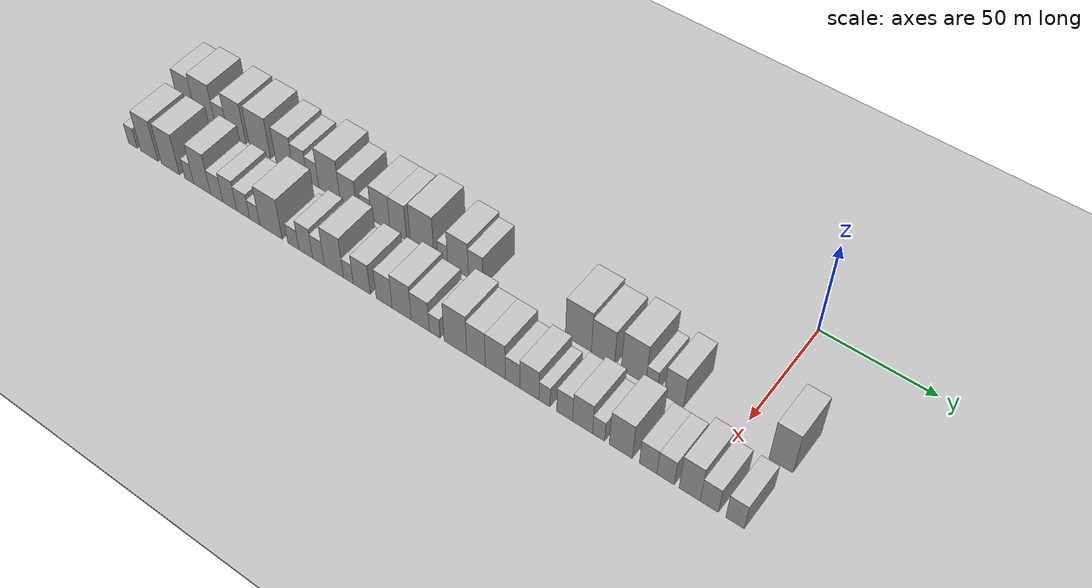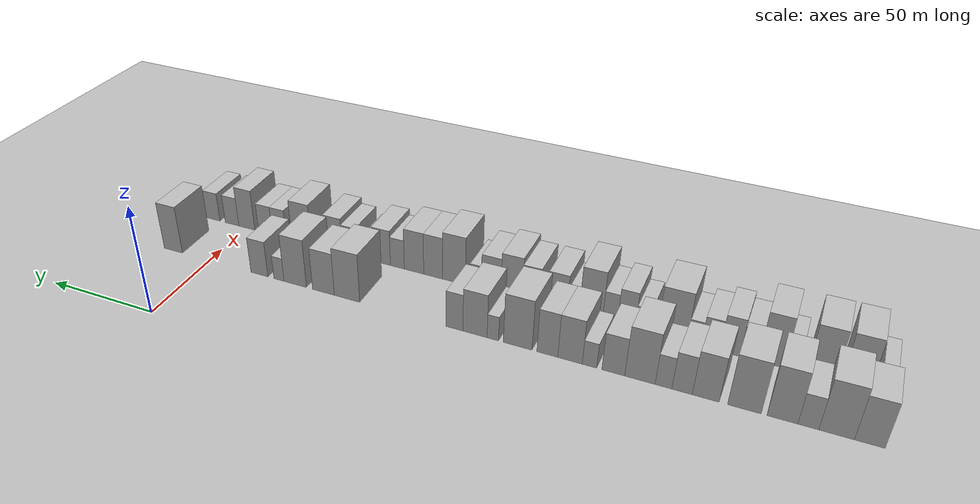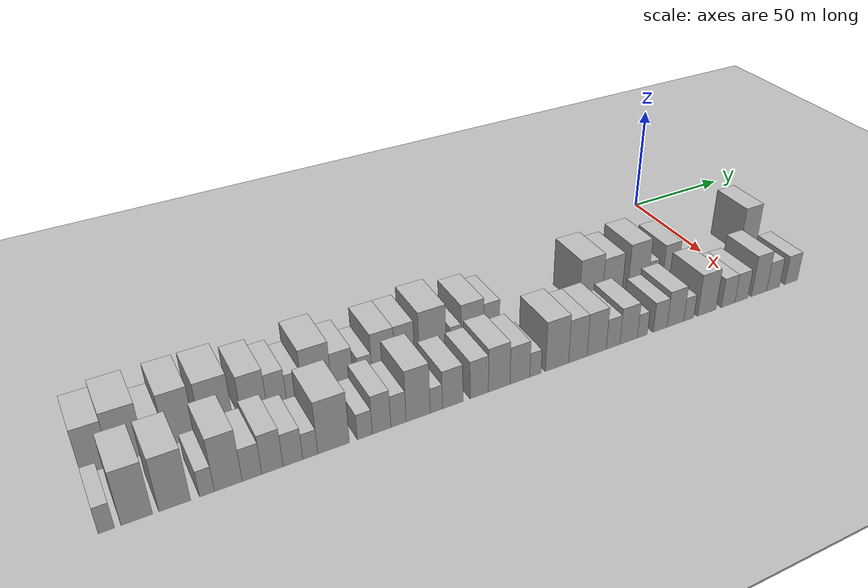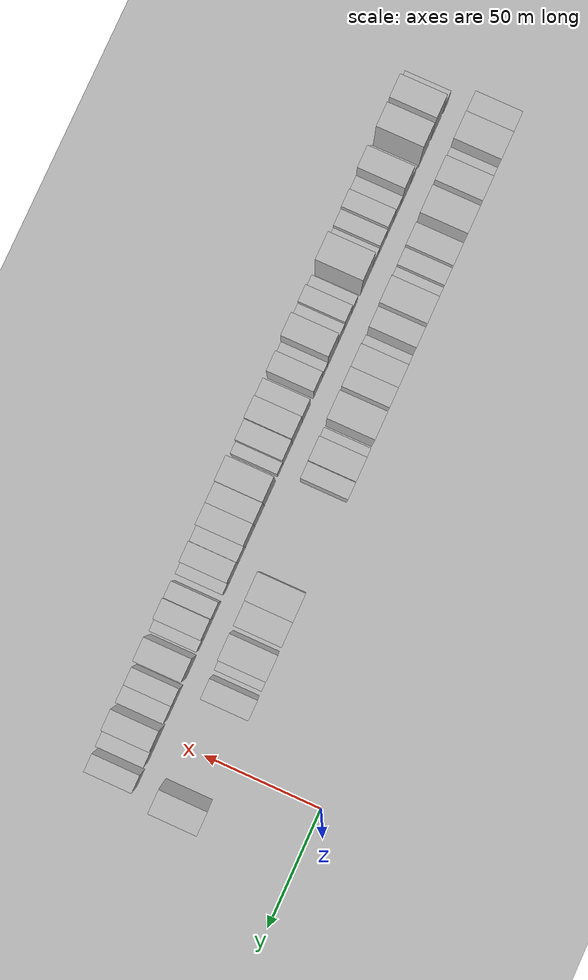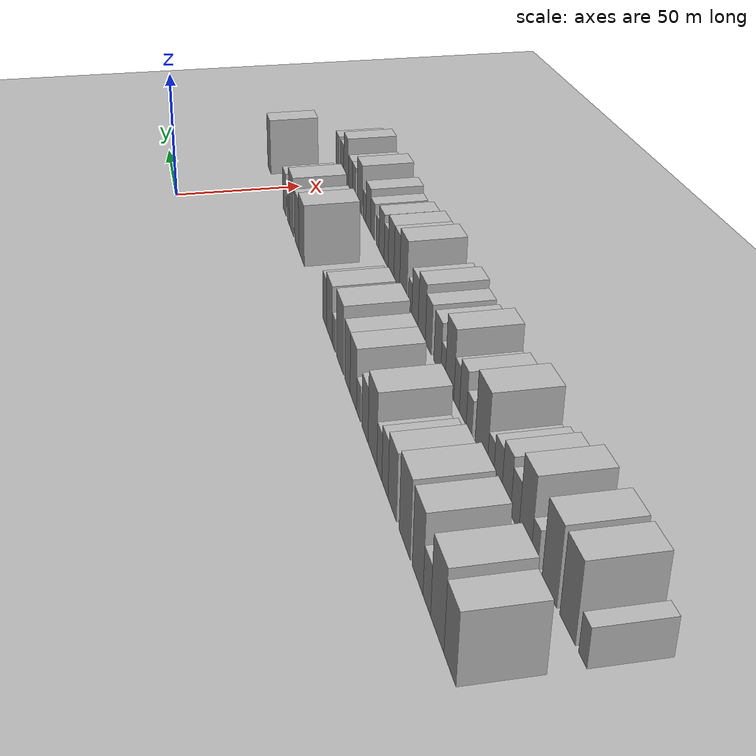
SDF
<sdf version="1.6">
 <world name="default">
  <include><name>ground_plane_1</name><uri>model://HANNAS_ground_plane</uri></include>
  <include>
   <name>ground_plane_2</name>
   <uri>model://HANNAS_ground_plane</uri>
   <pose>100 0 0  0 0 0</pose>
  </include>
  <model name="building_1">
   <static>1</static>
   <pose>50.0000 -272.9973 0 0.000000 0.000000 0.000000</pose>
   <link name="link">
    <pose>0 0 10.50 0 0 0</pose>
    <collision name="collision"><geometry><box><size>20.0000 10.0054 21.0000</size></box></geometry></collision>
    <visual name="visual">
     <cast_shadows>0</cast_shadows>
     <geometry><box><size>20.0000 10.0054 21.0000</size></box></geometry>
     <material>
      <script>
       <uri>model://HANNAS_wall/materials/scripts</uri>
       <uri>model://HANNAS_wall/materials/textures</uri>
       <name>vrc/HANNAS_wall</name>
      </script>
     </material>
    </visual>
   </link>
  </model>
  <model name="building_2">
   <static>1</static>
   <pose>50.0000 -262.0783 0 0.000000 0.000000 0.000000</pose>
   <link name="link">
    <pose>0 0 12.00 0 0 0</pose>
    <collision name="collision"><geometry><box><size>20.0000 11.8327 24.0000</size></box></geometry></collision>
    <visual name="visual">
     <cast_shadows>0</cast_shadows>
     <geometry><box><size>20.0000 11.8327 24.0000</size></box></geometry>
     <material>
      <script>
       <uri>model://HANNAS_wall/materials/scripts</uri>
       <uri>model://HANNAS_wall/materials/textures</uri>
       <name>vrc/HANNAS_wall</name>
      </script>
     </material>
    </visual>
   </link>
  </model>
  <model name="building_3">
   <static>1</static>
   <pose>50.0000 -252.6162 0 0.000000 0.000000 0.000000</pose>
   <link name="link">
    <pose>0 0 7.50 0 0 0</pose>
    <collision name="collision"><geometry><box><size>20.0000 7.0915 15.0000</size></box></geometry></collision>
    <visual name="visual">
     <cast_shadows>0</cast_shadows>
     <geometry><box><size>20.0000 7.0915 15.0000</size></box></geometry>
     <material>
      <script>
       <uri>model://HANNAS_wall/materials/scripts</uri>
       <uri>model://HANNAS_wall/materials/textures</uri>
       <name>vrc/HANNAS_wall</name>
      </script>
     </material>
    </visual>
   </link>
  </model>
  <model name="building_4">
   <static>1</static>
   <pose>50.0000 -243.7639 0 0.000000 0.000000 0.000000</pose>
   <link name="link">
    <pose>0 0 12.00 0 0 0</pose>
    <collision name="collision"><geometry><box><size>20.0000 10.6131 24.0000</size></box></geometry></collision>
    <visual name="visual">
     <cast_shadows>0</cast_shadows>
     <geometry><box><size>20.0000 10.6131 24.0000</size></box></geometry>
     <material>
      <script>
       <uri>model://HANNAS_wall/materials/scripts</uri>
       <uri>model://HANNAS_wall/materials/textures</uri>
       <name>vrc/HANNAS_wall</name>
      </script>
     </material>
    </visual>
   </link>
  </model>
  <model name="building_5">
   <static>1</static>
   <pose>50.0000 -230.4985 0 0.000000 0.000000 0.000000</pose>
   <link name="link">
    <pose>0 0 12.00 0 0 0</pose>
    <collision name="collision"><geometry><box><size>20.0000 11.9177 24.0000</size></box></geometry></collision>
    <visual name="visual">
     <cast_shadows>0</cast_shadows>
     <geometry><box><size>20.0000 11.9177 24.0000</size></box></geometry>
     <material>
      <script>
       <uri>model://HANNAS_wall/materials/scripts</uri>
       <uri>model://HANNAS_wall/materials/textures</uri>
       <name>vrc/HANNAS_wall</name>
      </script>
     </material>
    </visual>
   </link>
  </model>
  <model name="building_6">
   <static>1</static>
   <pose>50.0000 -216.6666 0 0.000000 0.000000 0.000000</pose>
   <link name="link">
    <pose>0 0 10.50 0 0 0</pose>
    <collision name="collision"><geometry><box><size>20.0000 9.7462 21.0000</size></box></geometry></collision>
    <visual name="visual">
     <cast_shadows>0</cast_shadows>
     <geometry><box><size>20.0000 9.7462 21.0000</size></box></geometry>
     <material>
      <script>
       <uri>model://HANNAS_wall/materials/scripts</uri>
       <uri>model://HANNAS_wall/materials/textures</uri>
       <name>vrc/HANNAS_wall</name>
      </script>
     </material>
    </visual>
   </link>
  </model>
  <model name="building_7">
   <static>1</static>
   <pose>50.0000 -208.0286 0 0.000000 0.000000 0.000000</pose>
   <link name="link">
    <pose>0 0 9.00 0 0 0</pose>
    <collision name="collision"><geometry><box><size>20.0000 7.5296 18.0000</size></box></geometry></collision>
    <visual name="visual">
     <cast_shadows>0</cast_shadows>
     <geometry><box><size>20.0000 7.5296 18.0000</size></box></geometry>
     <material>
      <script>
       <uri>model://HANNAS_wall/materials/scripts</uri>
       <uri>model://HANNAS_wall/materials/textures</uri>
       <name>vrc/HANNAS_wall</name>
      </script>
     </material>
    </visual>
   </link>
  </model>
  <model name="building_8">
   <static>1</static>
   <pose>50.0000 -201.1453 0 0.000000 0.000000 0.000000</pose>
   <link name="link">
    <pose>0 0 7.50 0 0 0</pose>
    <collision name="collision"><geometry><box><size>20.0000 6.2371 15.0000</size></box></geometry></collision>
    <visual name="visual">
     <cast_shadows>0</cast_shadows>
     <geometry><box><size>20.0000 6.2371 15.0000</size></box></geometry>
     <material>
      <script>
       <uri>model://HANNAS_wall/materials/scripts</uri>
       <uri>model://HANNAS_wall/materials/textures</uri>
       <name>vrc/HANNAS_wall</name>
      </script>
     </material>
    </visual>
   </link>
  </model>
  <model name="building_9">
   <static>1</static>
   <pose>50.0000 -192.2525 0 0.000000 0.000000 0.000000</pose>
   <link name="link">
    <pose>0 0 12.00 0 0 0</pose>
    <collision name="collision"><geometry><box><size>20.0000 11.5486 24.0000</size></box></geometry></collision>
    <visual name="visual">
     <cast_shadows>0</cast_shadows>
     <geometry><box><size>20.0000 11.5486 24.0000</size></box></geometry>
     <material>
      <script>
       <uri>model://HANNAS_wall/materials/scripts</uri>
       <uri>model://HANNAS_wall/materials/textures</uri>
       <name>vrc/HANNAS_wall</name>
      </script>
     </material>
    </visual>
   </link>
  </model>
  <model name="building_10">
   <static>1</static>
   <pose>50.0000 -182.0756 0 0.000000 0.000000 0.000000</pose>
   <link name="link">
    <pose>0 0 9.00 0 0 0</pose>
    <collision name="collision"><geometry><box><size>20.0000 8.8052 18.0000</size></box></geometry></collision>
    <visual name="visual">
     <cast_shadows>0</cast_shadows>
     <geometry><box><size>20.0000 8.8052 18.0000</size></box></geometry>
     <material>
      <script>
       <uri>model://HANNAS_wall/materials/scripts</uri>
       <uri>model://HANNAS_wall/materials/textures</uri>
       <name>vrc/HANNAS_wall</name>
      </script>
     </material>
    </visual>
   </link>
  </model>
  <model name="building_11">
   <static>1</static>
   <pose>50.0000 -172.8159 0 0.000000 0.000000 0.000000</pose>
   <link name="link">
    <pose>0 0 6.00 0 0 0</pose>
    <collision name="collision"><geometry><box><size>20.0000 5.7141 12.0000</size></box></geometry></collision>
    <visual name="visual">
     <cast_shadows>0</cast_shadows>
     <geometry><box><size>20.0000 5.7141 12.0000</size></box></geometry>
     <material>
      <script>
       <uri>model://HANNAS_wall/materials/scripts</uri>
       <uri>model://HANNAS_wall/materials/textures</uri>
       <name>vrc/HANNAS_wall</name>
      </script>
     </material>
    </visual>
   </link>
  </model>
  <model name="building_12">
   <static>1</static>
   <pose>50.0000 -165.0856 0 0.000000 0.000000 0.000000</pose>
   <link name="link">
    <pose>0 0 10.50 0 0 0</pose>
    <collision name="collision"><geometry><box><size>20.0000 9.7466 21.0000</size></box></geometry></collision>
    <visual name="visual">
     <cast_shadows>0</cast_shadows>
     <geometry><box><size>20.0000 9.7466 21.0000</size></box></geometry>
     <material>
      <script>
       <uri>model://HANNAS_wall/materials/scripts</uri>
       <uri>model://HANNAS_wall/materials/textures</uri>
       <name>vrc/HANNAS_wall</name>
      </script>
     </material>
    </visual>
   </link>
  </model>
  <model name="building_13">
   <static>1</static>
   <pose>50.0000 -156.0007 0 0.000000 0.000000 0.000000</pose>
   <link name="link">
    <pose>0 0 10.50 0 0 0</pose>
    <collision name="collision"><geometry><box><size>20.0000 8.4233 21.0000</size></box></geometry></collision>
    <visual name="visual">
     <cast_shadows>0</cast_shadows>
     <geometry><box><size>20.0000 8.4233 21.0000</size></box></geometry>
     <material>
      <script>
       <uri>model://HANNAS_wall/materials/scripts</uri>
       <uri>model://HANNAS_wall/materials/textures</uri>
       <name>vrc/HANNAS_wall</name>
      </script>
     </material>
    </visual>
   </link>
  </model>
  <model name="building_14">
   <static>1</static>
   <pose>50.0000 -143.8482 0 0.000000 0.000000 0.000000</pose>
   <link name="link">
    <pose>0 0 12.00 0 0 0</pose>
    <collision name="collision"><geometry><box><size>20.0000 11.8817 24.0000</size></box></geometry></collision>
    <visual name="visual">
     <cast_shadows>0</cast_shadows>
     <geometry><box><size>20.0000 11.8817 24.0000</size></box></geometry>
     <material>
      <script>
       <uri>model://HANNAS_wall/materials/scripts</uri>
       <uri>model://HANNAS_wall/materials/textures</uri>
       <name>vrc/HANNAS_wall</name>
      </script>
     </material>
    </visual>
   </link>
  </model>
  <model name="building_15">
   <static>1</static>
   <pose>50.0000 -133.4855 0 0.000000 0.000000 0.000000</pose>
   <link name="link">
    <pose>0 0 6.00 0 0 0</pose>
    <collision name="collision"><geometry><box><size>20.0000 4.8438 12.0000</size></box></geometry></collision>
    <visual name="visual">
     <cast_shadows>0</cast_shadows>
     <geometry><box><size>20.0000 4.8438 12.0000</size></box></geometry>
     <material>
      <script>
       <uri>model://HANNAS_wall/materials/scripts</uri>
       <uri>model://HANNAS_wall/materials/textures</uri>
       <name>vrc/HANNAS_wall</name>
      </script>
     </material>
    </visual>
   </link>
  </model>
  <model name="building_16">
   <static>1</static>
   <pose>50.0000 -125.9108 0 0.000000 0.000000 0.000000</pose>
   <link name="link">
    <pose>0 0 10.50 0 0 0</pose>
    <collision name="collision"><geometry><box><size>20.0000 10.3055 21.0000</size></box></geometry></collision>
    <visual name="visual">
     <cast_shadows>0</cast_shadows>
     <geometry><box><size>20.0000 10.3055 21.0000</size></box></geometry>
     <material>
      <script>
       <uri>model://HANNAS_wall/materials/scripts</uri>
       <uri>model://HANNAS_wall/materials/textures</uri>
       <name>vrc/HANNAS_wall</name>
      </script>
     </material>
    </visual>
   </link>
  </model>
  <model name="building_17">
   <static>1</static>
   <pose>50.0000 -117.1440 0 0.000000 0.000000 0.000000</pose>
   <link name="link">
    <pose>0 0 9.00 0 0 0</pose>
    <collision name="collision"><geometry><box><size>20.0000 7.2282 18.0000</size></box></geometry></collision>
    <visual name="visual">
     <cast_shadows>0</cast_shadows>
     <geometry><box><size>20.0000 7.2282 18.0000</size></box></geometry>
     <material>
      <script>
       <uri>model://HANNAS_wall/materials/scripts</uri>
       <uri>model://HANNAS_wall/materials/textures</uri>
       <name>vrc/HANNAS_wall</name>
      </script>
     </material>
    </visual>
   </link>
  </model>
  <model name="building_18">
   <static>1</static>
   <pose>50.0000 -68.6288 0 0.000000 0.000000 0.000000</pose>
   <link name="link">
    <pose>0 0 12.00 0 0 0</pose>
    <collision name="collision"><geometry><box><size>20.0000 11.9341 24.0000</size></box></geometry></collision>
    <visual name="visual">
     <cast_shadows>0</cast_shadows>
     <geometry><box><size>20.0000 11.9341 24.0000</size></box></geometry>
     <material>
      <script>
       <uri>model://HANNAS_wall/materials/scripts</uri>
       <uri>model://HANNAS_wall/materials/textures</uri>
       <name>vrc/HANNAS_wall</name>
      </script>
     </material>
    </visual>
   </link>
  </model>
  <model name="building_19">
   <static>1</static>
   <pose>50.0000 -57.4570 0 0.000000 0.000000 0.000000</pose>
   <link name="link">
    <pose>0 0 10.50 0 0 0</pose>
    <collision name="collision"><geometry><box><size>20.0000 10.4093 21.0000</size></box></geometry></collision>
    <visual name="visual">
     <cast_shadows>0</cast_shadows>
     <geometry><box><size>20.0000 10.4093 21.0000</size></box></geometry>
     <material>
      <script>
       <uri>model://HANNAS_wall/materials/scripts</uri>
       <uri>model://HANNAS_wall/materials/textures</uri>
       <name>vrc/HANNAS_wall</name>
      </script>
     </material>
    </visual>
   </link>
  </model>
  <model name="building_20">
   <static>1</static>
   <pose>50.0000 -43.7756 0 0.000000 0.000000 0.000000</pose>
   <link name="link">
    <pose>0 0 12.00 0 0 0</pose>
    <collision name="collision"><geometry><box><size>20.0000 10.9534 24.0000</size></box></geometry></collision>
    <visual name="visual">
     <cast_shadows>0</cast_shadows>
     <geometry><box><size>20.0000 10.9534 24.0000</size></box></geometry>
     <material>
      <script>
       <uri>model://HANNAS_wall/materials/scripts</uri>
       <uri>model://HANNAS_wall/materials/textures</uri>
       <name>vrc/HANNAS_wall</name>
      </script>
     </material>
    </visual>
   </link>
  </model>
  <model name="building_21">
   <static>1</static>
   <pose>50.0000 -35.7943 0 0.000000 0.000000 0.000000</pose>
   <link name="link">
    <pose>0 0 6.00 0 0 0</pose>
    <collision name="collision"><geometry><box><size>20.0000 5.0093 12.0000</size></box></geometry></collision>
    <visual name="visual">
     <cast_shadows>0</cast_shadows>
     <geometry><box><size>20.0000 5.0093 12.0000</size></box></geometry>
     <material>
      <script>
       <uri>model://HANNAS_wall/materials/scripts</uri>
       <uri>model://HANNAS_wall/materials/textures</uri>
       <name>vrc/HANNAS_wall</name>
      </script>
     </material>
    </visual>
   </link>
  </model>
  <model name="building_22">
   <static>1</static>
   <pose>50.0000 -26.0420 0 0.000000 0.000000 0.000000</pose>
   <link name="link">
    <pose>0 0 9.00 0 0 0</pose>
    <collision name="collision"><geometry><box><size>20.0000 8.4953 18.0000</size></box></geometry></collision>
    <visual name="visual">
     <cast_shadows>0</cast_shadows>
     <geometry><box><size>20.0000 8.4953 18.0000</size></box></geometry>
     <material>
      <script>
       <uri>model://HANNAS_wall/materials/scripts</uri>
       <uri>model://HANNAS_wall/materials/textures</uri>
       <name>vrc/HANNAS_wall</name>
      </script>
     </material>
    </visual>
   </link>
  </model>
  <model name="building_23">
   <static>1</static>
   <pose>50.0000 18.8368 0 0.000000 0.000000 0.000000</pose>
   <link name="link">
    <pose>0 0 12.00 0 0 0</pose>
    <collision name="collision"><geometry><box><size>20.0000 9.7541 24.0000</size></box></geometry></collision>
    <visual name="visual">
     <cast_shadows>0</cast_shadows>
     <geometry><box><size>20.0000 9.7541 24.0000</size></box></geometry>
     <material>
      <script>
       <uri>model://HANNAS_wall/materials/scripts</uri>
       <uri>model://HANNAS_wall/materials/textures</uri>
       <name>vrc/HANNAS_wall</name>
      </script>
     </material>
    </visual>
   </link>
  </model>
  <model name="building_55">
   <static>1</static>
   <pose>79.0000 -275.4391 0 0.000000 0.000000 0.000000</pose>
   <link name="link">
    <pose>0 0 6.00 0 0 0</pose>
    <collision name="collision"><geometry><box><size>20.0000 5.1218 12.0000</size></box></geometry></collision>
    <visual name="visual">
     <cast_shadows>0</cast_shadows>
     <geometry><box><size>20.0000 5.1218 12.0000</size></box></geometry>
     <material>
      <script>
       <uri>model://HANNAS_wall/materials/scripts</uri>
       <uri>model://HANNAS_wall/materials/textures</uri>
       <name>vrc/HANNAS_wall</name>
      </script>
     </material>
    </visual>
   </link>
  </model>
  <model name="building_56">
   <static>1</static>
   <pose>79.0000 -265.8106 0 0.000000 0.000000 0.000000</pose>
   <link name="link">
    <pose>0 0 12.00 0 0 0</pose>
    <collision name="collision"><geometry><box><size>20.0000 10.1352 24.0000</size></box></geometry></collision>
    <visual name="visual">
     <cast_shadows>0</cast_shadows>
     <geometry><box><size>20.0000 10.1352 24.0000</size></box></geometry>
     <material>
      <script>
       <uri>model://HANNAS_wall/materials/scripts</uri>
       <uri>model://HANNAS_wall/materials/textures</uri>
       <name>vrc/HANNAS_wall</name>
      </script>
     </material>
    </visual>
   </link>
  </model>
  <model name="building_57">
   <static>1</static>
   <pose>79.0000 -253.4987 0 0.000000 0.000000 0.000000</pose>
   <link name="link">
    <pose>0 0 12.00 0 0 0</pose>
    <collision name="collision"><geometry><box><size>20.0000 10.4887 24.0000</size></box></geometry></collision>
    <visual name="visual">
     <cast_shadows>0</cast_shadows>
     <geometry><box><size>20.0000 10.4887 24.0000</size></box></geometry>
     <material>
      <script>
       <uri>model://HANNAS_wall/materials/scripts</uri>
       <uri>model://HANNAS_wall/materials/textures</uri>
       <name>vrc/HANNAS_wall</name>
      </script>
     </material>
    </visual>
   </link>
  </model>
  <model name="building_58">
   <static>1</static>
   <pose>79.0000 -242.7353 0 0.000000 0.000000 0.000000</pose>
   <link name="link">
    <pose>0 0 6.00 0 0 0</pose>
    <collision name="collision"><geometry><box><size>20.0000 5.0380 12.0000</size></box></geometry></collision>
    <visual name="visual">
     <cast_shadows>0</cast_shadows>
     <geometry><box><size>20.0000 5.0380 12.0000</size></box></geometry>
     <material>
      <script>
       <uri>model://HANNAS_wall/materials/scripts</uri>
       <uri>model://HANNAS_wall/materials/textures</uri>
       <name>vrc/HANNAS_wall</name>
      </script>
     </material>
    </visual>
   </link>
  </model>
  <model name="building_59">
   <static>1</static>
   <pose>79.0000 -235.4133 0 0.000000 0.000000 0.000000</pose>
   <link name="link">
    <pose>0 0 12.00 0 0 0</pose>
    <collision name="collision"><geometry><box><size>20.0000 9.6059 24.0000</size></box></geometry></collision>
    <visual name="visual">
     <cast_shadows>0</cast_shadows>
     <geometry><box><size>20.0000 9.6059 24.0000</size></box></geometry>
     <material>
      <script>
       <uri>model://HANNAS_wall/materials/scripts</uri>
       <uri>model://HANNAS_wall/materials/textures</uri>
       <name>vrc/HANNAS_wall</name>
      </script>
     </material>
    </visual>
   </link>
  </model>
  <model name="building_60">
   <static>1</static>
   <pose>79.0000 -227.1909 0 0.000000 0.000000 0.000000</pose>
   <link name="link">
    <pose>0 0 7.50 0 0 0</pose>
    <collision name="collision"><geometry><box><size>20.0000 6.8389 15.0000</size></box></geometry></collision>
    <visual name="visual">
     <cast_shadows>0</cast_shadows>
     <geometry><box><size>20.0000 6.8389 15.0000</size></box></geometry>
     <material>
      <script>
       <uri>model://HANNAS_wall/materials/scripts</uri>
       <uri>model://HANNAS_wall/materials/textures</uri>
       <name>vrc/HANNAS_wall</name>
      </script>
     </material>
    </visual>
   </link>
  </model>
  <model name="building_61">
   <static>1</static>
   <pose>79.0000 -219.9484 0 0.000000 0.000000 0.000000</pose>
   <link name="link">
    <pose>0 0 9.00 0 0 0</pose>
    <collision name="collision"><geometry><box><size>20.0000 7.6461 18.0000</size></box></geometry></collision>
    <visual name="visual">
     <cast_shadows>0</cast_shadows>
     <geometry><box><size>20.0000 7.6461 18.0000</size></box></geometry>
     <material>
      <script>
       <uri>model://HANNAS_wall/materials/scripts</uri>
       <uri>model://HANNAS_wall/materials/textures</uri>
       <name>vrc/HANNAS_wall</name>
      </script>
     </material>
    </visual>
   </link>
  </model>
  <model name="building_62">
   <static>1</static>
   <pose>79.0000 -212.5370 0 0.000000 0.000000 0.000000</pose>
   <link name="link">
    <pose>0 0 7.50 0 0 0</pose>
    <collision name="collision"><geometry><box><size>20.0000 7.1766 15.0000</size></box></geometry></collision>
    <visual name="visual">
     <cast_shadows>0</cast_shadows>
     <geometry><box><size>20.0000 7.1766 15.0000</size></box></geometry>
     <material>
      <script>
       <uri>model://HANNAS_wall/materials/scripts</uri>
       <uri>model://HANNAS_wall/materials/textures</uri>
       <name>vrc/HANNAS_wall</name>
      </script>
     </material>
    </visual>
   </link>
  </model>
  <model name="building_63">
   <static>1</static>
   <pose>79.0000 -206.1921 0 0.000000 0.000000 0.000000</pose>
   <link name="link">
    <pose>0 0 6.00 0 0 0</pose>
    <collision name="collision"><geometry><box><size>20.0000 5.5131 12.0000</size></box></geometry></collision>
    <visual name="visual">
     <cast_shadows>0</cast_shadows>
     <geometry><box><size>20.0000 5.5131 12.0000</size></box></geometry>
     <material>
      <script>
       <uri>model://HANNAS_wall/materials/scripts</uri>
       <uri>model://HANNAS_wall/materials/textures</uri>
       <name>vrc/HANNAS_wall</name>
      </script>
     </material>
    </visual>
   </link>
  </model>
  <model name="building_64">
   <static>1</static>
   <pose>79.0000 -197.4586 0 0.000000 0.000000 0.000000</pose>
   <link name="link">
    <pose>0 0 12.00 0 0 0</pose>
    <collision name="collision"><geometry><box><size>20.0000 11.9539 24.0000</size></box></geometry></collision>
    <visual name="visual">
     <cast_shadows>0</cast_shadows>
     <geometry><box><size>20.0000 11.9539 24.0000</size></box></geometry>
     <material>
      <script>
       <uri>model://HANNAS_wall/materials/scripts</uri>
       <uri>model://HANNAS_wall/materials/textures</uri>
       <name>vrc/HANNAS_wall</name>
      </script>
     </material>
    </visual>
   </link>
  </model>
  <model name="building_65">
   <static>1</static>
   <pose>79.0000 -185.5794 0 0.000000 0.000000 0.000000</pose>
   <link name="link">
    <pose>0 0 6.00 0 0 0</pose>
    <collision name="collision"><geometry><box><size>20.0000 5.8046 12.0000</size></box></geometry></collision>
    <visual name="visual">
     <cast_shadows>0</cast_shadows>
     <geometry><box><size>20.0000 5.8046 12.0000</size></box></geometry>
     <material>
      <script>
       <uri>model://HANNAS_wall/materials/scripts</uri>
       <uri>model://HANNAS_wall/materials/textures</uri>
       <name>vrc/HANNAS_wall</name>
      </script>
     </material>
    </visual>
   </link>
  </model>
  <model name="building_66">
   <static>1</static>
   <pose>79.0000 -179.0302 0 0.000000 0.000000 0.000000</pose>
   <link name="link">
    <pose>0 0 9.00 0 0 0</pose>
    <collision name="collision"><geometry><box><size>20.0000 7.2938 18.0000</size></box></geometry></collision>
    <visual name="visual">
     <cast_shadows>0</cast_shadows>
     <geometry><box><size>20.0000 7.2938 18.0000</size></box></geometry>
     <material>
      <script>
       <uri>model://HANNAS_wall/materials/scripts</uri>
       <uri>model://HANNAS_wall/materials/textures</uri>
       <name>vrc/HANNAS_wall</name>
      </script>
     </material>
    </visual>
   </link>
  </model>
  <model name="building_67">
   <static>1</static>
   <pose>79.0000 -172.3479 0 0.000000 0.000000 0.000000</pose>
   <link name="link">
    <pose>0 0 7.50 0 0 0</pose>
    <collision name="collision"><geometry><box><size>20.0000 6.0707 15.0000</size></box></geometry></collision>
    <visual name="visual">
     <cast_shadows>0</cast_shadows>
     <geometry><box><size>20.0000 6.0707 15.0000</size></box></geometry>
     <material>
      <script>
       <uri>model://HANNAS_wall/materials/scripts</uri>
       <uri>model://HANNAS_wall/materials/textures</uri>
       <name>vrc/HANNAS_wall</name>
      </script>
     </material>
    </visual>
   </link>
  </model>
  <model name="building_68">
   <static>1</static>
   <pose>79.0000 -164.4032 0 0.000000 0.000000 0.000000</pose>
   <link name="link">
    <pose>0 0 12.00 0 0 0</pose>
    <collision name="collision"><geometry><box><size>20.0000 9.8187 24.0000</size></box></geometry></collision>
    <visual name="visual">
     <cast_shadows>0</cast_shadows>
     <geometry><box><size>20.0000 9.8187 24.0000</size></box></geometry>
     <material>
      <script>
       <uri>model://HANNAS_wall/materials/scripts</uri>
       <uri>model://HANNAS_wall/materials/textures</uri>
       <name>vrc/HANNAS_wall</name>
      </script>
     </material>
    </visual>
   </link>
  </model>
  <model name="building_69">
   <static>1</static>
   <pose>79.0000 -156.9844 0 0.000000 0.000000 0.000000</pose>
   <link name="link">
    <pose>0 0 6.00 0 0 0</pose>
    <collision name="collision"><geometry><box><size>20.0000 5.0189 12.0000</size></box></geometry></collision>
    <visual name="visual">
     <cast_shadows>0</cast_shadows>
     <geometry><box><size>20.0000 5.0189 12.0000</size></box></geometry>
     <material>
      <script>
       <uri>model://HANNAS_wall/materials/scripts</uri>
       <uri>model://HANNAS_wall/materials/textures</uri>
       <name>vrc/HANNAS_wall</name>
      </script>
     </material>
    </visual>
   </link>
  </model>
  <model name="building_70">
   <static>1</static>
   <pose>79.0000 -150.1710 0 0.000000 0.000000 0.000000</pose>
   <link name="link">
    <pose>0 0 9.00 0 0 0</pose>
    <collision name="collision"><geometry><box><size>20.0000 8.6078 18.0000</size></box></geometry></collision>
    <visual name="visual">
     <cast_shadows>0</cast_shadows>
     <geometry><box><size>20.0000 8.6078 18.0000</size></box></geometry>
     <material>
      <script>
       <uri>model://HANNAS_wall/materials/scripts</uri>
       <uri>model://HANNAS_wall/materials/textures</uri>
       <name>vrc/HANNAS_wall</name>
      </script>
     </material>
    </visual>
   </link>
  </model>
  <model name="building_71">
   <static>1</static>
   <pose>79.0000 -138.9372 0 0.000000 0.000000 0.000000</pose>
   <link name="link">
    <pose>0 0 9.00 0 0 0</pose>
    <collision name="collision"><geometry><box><size>20.0000 7.8598 18.0000</size></box></geometry></collision>
    <visual name="visual">
     <cast_shadows>0</cast_shadows>
     <geometry><box><size>20.0000 7.8598 18.0000</size></box></geometry>
     <material>
      <script>
       <uri>model://HANNAS_wall/materials/scripts</uri>
       <uri>model://HANNAS_wall/materials/textures</uri>
       <name>vrc/HANNAS_wall</name>
      </script>
     </material>
    </visual>
   </link>
  </model>
  <model name="building_72">
   <static>1</static>
   <pose>79.0000 -130.2836 0 0.000000 0.000000 0.000000</pose>
   <link name="link">
    <pose>0 0 10.50 0 0 0</pose>
    <collision name="collision"><geometry><box><size>20.0000 9.4475 21.0000</size></box></geometry></collision>
    <visual name="visual">
     <cast_shadows>0</cast_shadows>
     <geometry><box><size>20.0000 9.4475 21.0000</size></box></geometry>
     <material>
      <script>
       <uri>model://HANNAS_wall/materials/scripts</uri>
       <uri>model://HANNAS_wall/materials/textures</uri>
       <name>vrc/HANNAS_wall</name>
      </script>
     </material>
    </visual>
   </link>
  </model>
  <model name="building_73">
   <static>1</static>
   <pose>79.0000 -121.1525 0 0.000000 0.000000 0.000000</pose>
   <link name="link">
    <pose>0 0 9.00 0 0 0</pose>
    <collision name="collision"><geometry><box><size>20.0000 8.8147 18.0000</size></box></geometry></collision>
    <visual name="visual">
     <cast_shadows>0</cast_shadows>
     <geometry><box><size>20.0000 8.8147 18.0000</size></box></geometry>
     <material>
      <script>
       <uri>model://HANNAS_wall/materials/scripts</uri>
       <uri>model://HANNAS_wall/materials/textures</uri>
       <name>vrc/HANNAS_wall</name>
      </script>
     </material>
    </visual>
   </link>
  </model>
  <model name="building_74">
   <static>1</static>
   <pose>79.0000 -114.1731 0 0.000000 0.000000 0.000000</pose>
   <link name="link">
    <pose>0 0 6.00 0 0 0</pose>
    <collision name="collision"><geometry><box><size>20.0000 5.1441 12.0000</size></box></geometry></collision>
    <visual name="visual">
     <cast_shadows>0</cast_shadows>
     <geometry><box><size>20.0000 5.1441 12.0000</size></box></geometry>
     <material>
      <script>
       <uri>model://HANNAS_wall/materials/scripts</uri>
       <uri>model://HANNAS_wall/materials/textures</uri>
       <name>vrc/HANNAS_wall</name>
      </script>
     </material>
    </visual>
   </link>
  </model>
  <model name="building_75">
   <static>1</static>
   <pose>79.0000 -104.2543 0 0.000000 0.000000 0.000000</pose>
   <link name="link">
    <pose>0 0 12.00 0 0 0</pose>
    <collision name="collision"><geometry><box><size>20.0000 10.6934 24.0000</size></box></geometry></collision>
    <visual name="visual">
     <cast_shadows>0</cast_shadows>
     <geometry><box><size>20.0000 10.6934 24.0000</size></box></geometry>
     <material>
      <script>
       <uri>model://HANNAS_wall/materials/scripts</uri>
       <uri>model://HANNAS_wall/materials/textures</uri>
       <name>vrc/HANNAS_wall</name>
      </script>
     </material>
    </visual>
   </link>
  </model>
  <model name="building_76">
   <static>1</static>
   <pose>79.0000 -94.5380 0 0.000000 0.000000 0.000000</pose>
   <link name="link">
    <pose>0 0 10.50 0 0 0</pose>
    <collision name="collision"><geometry><box><size>20.0000 8.7393 21.0000</size></box></geometry></collision>
    <visual name="visual">
     <cast_shadows>0</cast_shadows>
     <geometry><box><size>20.0000 8.7393 21.0000</size></box></geometry>
     <material>
      <script>
       <uri>model://HANNAS_wall/materials/scripts</uri>
       <uri>model://HANNAS_wall/materials/textures</uri>
       <name>vrc/HANNAS_wall</name>
      </script>
     </material>
    </visual>
   </link>
  </model>
  <model name="building_77">
   <static>1</static>
   <pose>79.0000 -85.5623 0 0.000000 0.000000 0.000000</pose>
   <link name="link">
    <pose>0 0 10.50 0 0 0</pose>
    <collision name="collision"><geometry><box><size>20.0000 9.2120 21.0000</size></box></geometry></collision>
    <visual name="visual">
     <cast_shadows>0</cast_shadows>
     <geometry><box><size>20.0000 9.2120 21.0000</size></box></geometry>
     <material>
      <script>
       <uri>model://HANNAS_wall/materials/scripts</uri>
       <uri>model://HANNAS_wall/materials/textures</uri>
       <name>vrc/HANNAS_wall</name>
      </script>
     </material>
    </visual>
   </link>
  </model>
  <model name="building_78">
   <static>1</static>
   <pose>79.0000 -77.6036 0 0.000000 0.000000 0.000000</pose>
   <link name="link">
    <pose>0 0 7.50 0 0 0</pose>
    <collision name="collision"><geometry><box><size>20.0000 6.7054 15.0000</size></box></geometry></collision>
    <visual name="visual">
     <cast_shadows>0</cast_shadows>
     <geometry><box><size>20.0000 6.7054 15.0000</size></box></geometry>
     <material>
      <script>
       <uri>model://HANNAS_wall/materials/scripts</uri>
       <uri>model://HANNAS_wall/materials/textures</uri>
       <name>vrc/HANNAS_wall</name>
      </script>
     </material>
    </visual>
   </link>
  </model>
  <model name="building_79">
   <static>1</static>
   <pose>79.0000 -69.9114 0 0.000000 0.000000 0.000000</pose>
   <link name="link">
    <pose>0 0 9.00 0 0 0</pose>
    <collision name="collision"><geometry><box><size>20.0000 8.6790 18.0000</size></box></geometry></collision>
    <visual name="visual">
     <cast_shadows>0</cast_shadows>
     <geometry><box><size>20.0000 8.6790 18.0000</size></box></geometry>
     <material>
      <script>
       <uri>model://HANNAS_wall/materials/scripts</uri>
       <uri>model://HANNAS_wall/materials/textures</uri>
       <name>vrc/HANNAS_wall</name>
      </script>
     </material>
    </visual>
   </link>
  </model>
  <model name="building_80">
   <static>1</static>
   <pose>79.0000 -63.0847 0 0.000000 0.000000 0.000000</pose>
   <link name="link">
    <pose>0 0 6.00 0 0 0</pose>
    <collision name="collision"><geometry><box><size>20.0000 4.9745 12.0000</size></box></geometry></collision>
    <visual name="visual">
     <cast_shadows>0</cast_shadows>
     <geometry><box><size>20.0000 4.9745 12.0000</size></box></geometry>
     <material>
      <script>
       <uri>model://HANNAS_wall/materials/scripts</uri>
       <uri>model://HANNAS_wall/materials/textures</uri>
       <name>vrc/HANNAS_wall</name>
      </script>
     </material>
    </visual>
   </link>
  </model>
  <model name="building_81">
   <static>1</static>
   <pose>79.0000 -54.0578 0 0.000000 0.000000 0.000000</pose>
   <link name="link">
    <pose>0 0 7.50 0 0 0</pose>
    <collision name="collision"><geometry><box><size>20.0000 7.0793 15.0000</size></box></geometry></collision>
    <visual name="visual">
     <cast_shadows>0</cast_shadows>
     <geometry><box><size>20.0000 7.0793 15.0000</size></box></geometry>
     <material>
      <script>
       <uri>model://HANNAS_wall/materials/scripts</uri>
       <uri>model://HANNAS_wall/materials/textures</uri>
       <name>vrc/HANNAS_wall</name>
      </script>
     </material>
    </visual>
   </link>
  </model>
  <model name="building_82">
   <static>1</static>
   <pose>79.0000 -46.1558 0 0.000000 0.000000 0.000000</pose>
   <link name="link">
    <pose>0 0 9.00 0 0 0</pose>
    <collision name="collision"><geometry><box><size>20.0000 8.7249 18.0000</size></box></geometry></collision>
    <visual name="visual">
     <cast_shadows>0</cast_shadows>
     <geometry><box><size>20.0000 8.7249 18.0000</size></box></geometry>
     <material>
      <script>
       <uri>model://HANNAS_wall/materials/scripts</uri>
       <uri>model://HANNAS_wall/materials/textures</uri>
       <name>vrc/HANNAS_wall</name>
      </script>
     </material>
    </visual>
   </link>
  </model>
  <model name="building_83">
   <static>1</static>
   <pose>79.0000 -39.1553 0 0.000000 0.000000 0.000000</pose>
   <link name="link">
    <pose>0 0 6.00 0 0 0</pose>
    <collision name="collision"><geometry><box><size>20.0000 5.2760 12.0000</size></box></geometry></collision>
    <visual name="visual">
     <cast_shadows>0</cast_shadows>
     <geometry><box><size>20.0000 5.2760 12.0000</size></box></geometry>
     <material>
      <script>
       <uri>model://HANNAS_wall/materials/scripts</uri>
       <uri>model://HANNAS_wall/materials/textures</uri>
       <name>vrc/HANNAS_wall</name>
      </script>
     </material>
    </visual>
   </link>
  </model>
  <model name="building_84">
   <static>1</static>
   <pose>79.0000 -29.5752 0 0.000000 0.000000 0.000000</pose>
   <link name="link">
    <pose>0 0 10.50 0 0 0</pose>
    <collision name="collision"><geometry><box><size>20.0000 9.8843 21.0000</size></box></geometry></collision>
    <visual name="visual">
     <cast_shadows>0</cast_shadows>
     <geometry><box><size>20.0000 9.8843 21.0000</size></box></geometry>
     <material>
      <script>
       <uri>model://HANNAS_wall/materials/scripts</uri>
       <uri>model://HANNAS_wall/materials/textures</uri>
       <name>vrc/HANNAS_wall</name>
      </script>
     </material>
    </visual>
   </link>
  </model>
  <model name="building_85">
   <static>1</static>
   <pose>79.0000 -17.9379 0 0.000000 0.000000 0.000000</pose>
   <link name="link">
    <pose>0 0 7.50 0 0 0</pose>
    <collision name="collision"><geometry><box><size>20.0000 7.3903 15.0000</size></box></geometry></collision>
    <visual name="visual">
     <cast_shadows>0</cast_shadows>
     <geometry><box><size>20.0000 7.3903 15.0000</size></box></geometry>
     <material>
      <script>
       <uri>model://HANNAS_wall/materials/scripts</uri>
       <uri>model://HANNAS_wall/materials/textures</uri>
       <name>vrc/HANNAS_wall</name>
      </script>
     </material>
    </visual>
   </link>
  </model>
  <model name="building_86">
   <static>1</static>
   <pose>79.0000 -10.6068 0 0.000000 0.000000 0.000000</pose>
   <link name="link">
    <pose>0 0 7.50 0 0 0</pose>
    <collision name="collision"><geometry><box><size>20.0000 7.2719 15.0000</size></box></geometry></collision>
    <visual name="visual">
     <cast_shadows>0</cast_shadows>
     <geometry><box><size>20.0000 7.2719 15.0000</size></box></geometry>
     <material>
      <script>
       <uri>model://HANNAS_wall/materials/scripts</uri>
       <uri>model://HANNAS_wall/materials/textures</uri>
       <name>vrc/HANNAS_wall</name>
      </script>
     </material>
    </visual>
   </link>
  </model>
  <model name="building_87">
   <static>1</static>
   <pose>79.0000 -0.6291 0 0.000000 0.000000 0.000000</pose>
   <link name="link">
    <pose>0 0 10.50 0 0 0</pose>
    <collision name="collision"><geometry><box><size>20.0000 8.6836 21.0000</size></box></geometry></collision>
    <visual name="visual">
     <cast_shadows>0</cast_shadows>
     <geometry><box><size>20.0000 8.6836 21.0000</size></box></geometry>
     <material>
      <script>
       <uri>model://HANNAS_wall/materials/scripts</uri>
       <uri>model://HANNAS_wall/materials/textures</uri>
       <name>vrc/HANNAS_wall</name>
      </script>
     </material>
    </visual>
   </link>
  </model>
  <model name="building_88">
   <static>1</static>
   <pose>79.0000 7.4197 0 0.000000 0.000000 0.000000</pose>
   <link name="link">
    <pose>0 0 7.50 0 0 0</pose>
    <collision name="collision"><geometry><box><size>20.0000 7.4140 15.0000</size></box></geometry></collision>
    <visual name="visual">
     <cast_shadows>0</cast_shadows>
     <geometry><box><size>20.0000 7.4140 15.0000</size></box></geometry>
     <material>
      <script>
       <uri>model://HANNAS_wall/materials/scripts</uri>
       <uri>model://HANNAS_wall/materials/textures</uri>
       <name>vrc/HANNAS_wall</name>
      </script>
     </material>
    </visual>
   </link>
  </model>
  <model name="building_89">
   <static>1</static>
   <pose>79.0000 17.8469 0 0.000000 0.000000 0.000000</pose>
   <link name="link">
    <pose>0 0 7.50 0 0 0</pose>
    <collision name="collision"><geometry><box><size>20.0000 7.4405 15.0000</size></box></geometry></collision>
    <visual name="visual">
     <cast_shadows>0</cast_shadows>
     <geometry><box><size>20.0000 7.4405 15.0000</size></box></geometry>
     <material>
      <script>
       <uri>model://HANNAS_wall/materials/scripts</uri>
       <uri>model://HANNAS_wall/materials/textures</uri>
       <name>vrc/HANNAS_wall</name>
      </script>
     </material>
    </visual>
   </link>
  </model>
 </world>
</sdf>
